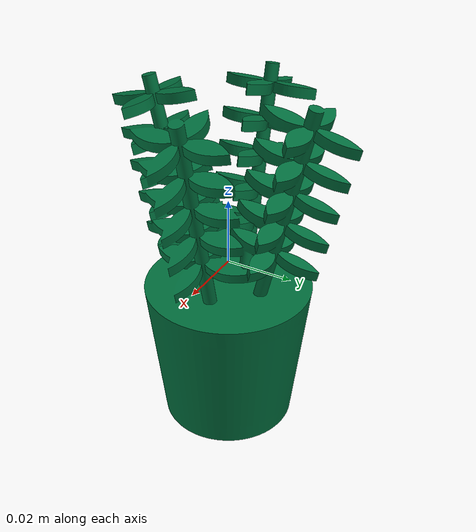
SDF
<?xml version ="1.0"?>
<sdf version="1.6">
    <model name="plant">
        <static>false</static>
        <link name="plant_link">
            <collision name="plant_collision">
                <pose>0 0 0.0525 0 0 0</pose>
                <geometry>
                    <cylinder>
                        <length>0.105</length>
                        <radius>0.05</radius>
                    </cylinder>
                </geometry>
            </collision>
            <inertial>
                <inertia>
                    <ixx>3.8594e-05</ixx>
                    <ixy>0</ixy>
                    <ixz>0</ixz>
                    <iyy>3.8594e-05</iyy>
                    <iyz>0</iyz>
                    <izz>3.125e-05</izz>
                </inertia>
                <mass>0.025</mass>
            </inertial>
            <visual name="plant_visual">
                <pose>0 0 -0.0525 0 0 0</pose>
                <geometry>
                    <mesh>
                        <uri>model://eurobot_24/plants/meshes/plante.dae</uri>
                        <scale>1.0 1.0 1.0</scale>
                    </mesh>
                </geometry>
            </visual>
        </link>
    </model>
</sdf>
